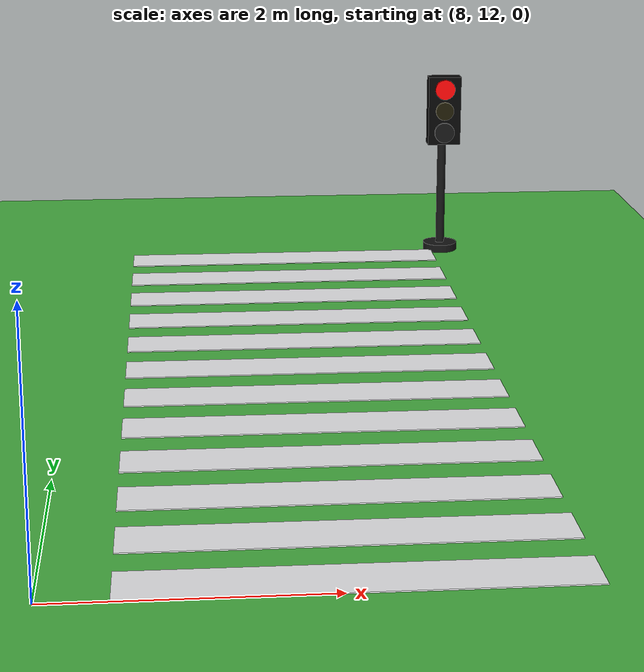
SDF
<sdf version="1.10">
 <world name="city_second">
  <model name="ground_plane">
   <static>true</static>
   <link name="link">
    <collision name="collision">
     <geometry><plane><normal>0 0 1</normal><size>300 300</size></plane></geometry>
    </collision>
    <visual name="visual">
     <geometry><plane><normal>0 0 1</normal><size>300 300</size></plane></geometry>
     <material>
      <ambient>0.280000001 0.689999998 0.25999999 1</ambient>
      <diffuse>0.280000001 0.689999998 0.25999999 1</diffuse>
      <specular>0.0299999993 0.0299999993 0.0299999993 1</specular>
     </material>
    </visual>
    <inertial>
     <mass>1</mass>
     <inertia><ixx>1</ixx><ixy>0</ixy><ixz>0</ixz><iyy>1</iyy><iyz>0</iyz><izz>1</izz></inertia>
    </inertial>
   </link>
  </model>
  <model name="crosswalk_v_2_1_east_6">
   <static>true</static>
   <pose>10.091699999999999 16.024799999999999 0.017000000000000001 0 0 0</pose>
   <link name="stripe_1">
    <collision name="collision">
     <geometry><box><size>3.2000000000000002 0.41999999999999998 0.01</size></box></geometry>
    </collision>
    <visual name="visual">
     <geometry><box><size>3.2000000000000002 0.41999999999999998 0.01</size></box></geometry>
     <material>
      <ambient>0.920000017 0.920000017 0.930000007 1</ambient>
      <diffuse>0.920000017 0.920000017 0.930000007 1</diffuse>
      <specular>0.0299999993 0.0299999993 0.0299999993 1</specular>
     </material>
    </visual>
    <pose>0 -3.8500000000000001 0 0 0 0</pose>
    <inertial>
     <mass>1</mass>
     <inertia><ixx>1</ixx><ixy>0</ixy><ixz>0</ixz><iyy>1</iyy><iyz>0</iyz><izz>1</izz></inertia>
    </inertial>
   </link>
   <link name="stripe_2">
    <collision name="collision">
     <geometry><box><size>3.2000000000000002 0.41999999999999998 0.01</size></box></geometry>
    </collision>
    <visual name="visual">
     <geometry><box><size>3.2000000000000002 0.41999999999999998 0.01</size></box></geometry>
     <material>
      <ambient>0.920000017 0.920000017 0.930000007 1</ambient>
      <diffuse>0.920000017 0.920000017 0.930000007 1</diffuse>
      <specular>0.0299999993 0.0299999993 0.0299999993 1</specular>
     </material>
    </visual>
    <pose>0 -3.1500000000000004 0 0 0 0</pose>
    <inertial>
     <mass>1</mass>
     <inertia><ixx>1</ixx><ixy>0</ixy><ixz>0</ixz><iyy>1</iyy><iyz>0</iyz><izz>1</izz></inertia>
    </inertial>
   </link>
   <link name="stripe_3">
    <collision name="collision">
     <geometry><box><size>3.2000000000000002 0.41999999999999998 0.01</size></box></geometry>
    </collision>
    <visual name="visual">
     <geometry><box><size>3.2000000000000002 0.41999999999999998 0.01</size></box></geometry>
     <material>
      <ambient>0.920000017 0.920000017 0.930000007 1</ambient>
      <diffuse>0.920000017 0.920000017 0.930000007 1</diffuse>
      <specular>0.0299999993 0.0299999993 0.0299999993 1</specular>
     </material>
    </visual>
    <pose>0 -2.4499999999999993 0 0 0 0</pose>
    <inertial>
     <mass>1</mass>
     <inertia><ixx>1</ixx><ixy>0</ixy><ixz>0</ixz><iyy>1</iyy><iyz>0</iyz><izz>1</izz></inertia>
    </inertial>
   </link>
   <link name="stripe_4">
    <collision name="collision">
     <geometry><box><size>3.2000000000000002 0.41999999999999998 0.01</size></box></geometry>
    </collision>
    <visual name="visual">
     <geometry><box><size>3.2000000000000002 0.41999999999999998 0.01</size></box></geometry>
     <material>
      <ambient>0.920000017 0.920000017 0.930000007 1</ambient>
      <diffuse>0.920000017 0.920000017 0.930000007 1</diffuse>
      <specular>0.0299999993 0.0299999993 0.0299999993 1</specular>
     </material>
    </visual>
    <pose>0 -1.75 0 0 0 0</pose>
    <inertial>
     <mass>1</mass>
     <inertia><ixx>1</ixx><ixy>0</ixy><ixz>0</ixz><iyy>1</iyy><iyz>0</iyz><izz>1</izz></inertia>
    </inertial>
   </link>
   <link name="stripe_5">
    <collision name="collision">
     <geometry><box><size>3.2000000000000002 0.41999999999999998 0.01</size></box></geometry>
    </collision>
    <visual name="visual">
     <geometry><box><size>3.2000000000000002 0.41999999999999998 0.01</size></box></geometry>
     <material>
      <ambient>0.920000017 0.920000017 0.930000007 1</ambient>
      <diffuse>0.920000017 0.920000017 0.930000007 1</diffuse>
      <specular>0.0299999993 0.0299999993 0.0299999993 1</specular>
     </material>
    </visual>
    <pose>0 -1.0500000000000007 0 0 0 0</pose>
    <inertial>
     <mass>1</mass>
     <inertia><ixx>1</ixx><ixy>0</ixy><ixz>0</ixz><iyy>1</iyy><iyz>0</iyz><izz>1</izz></inertia>
    </inertial>
   </link>
   <link name="stripe_6">
    <collision name="collision">
     <geometry><box><size>3.2000000000000002 0.41999999999999998 0.01</size></box></geometry>
    </collision>
    <visual name="visual">
     <geometry><box><size>3.2000000000000002 0.41999999999999998 0.01</size></box></geometry>
     <material>
      <ambient>0.920000017 0.920000017 0.930000007 1</ambient>
      <diffuse>0.920000017 0.920000017 0.930000007 1</diffuse>
      <specular>0.0299999993 0.0299999993 0.0299999993 1</specular>
     </material>
    </visual>
    <pose>0 -0.34999999999999964 0 0 0 0</pose>
    <inertial>
     <mass>1</mass>
     <inertia><ixx>1</ixx><ixy>0</ixy><ixz>0</ixz><iyy>1</iyy><iyz>0</iyz><izz>1</izz></inertia>
    </inertial>
   </link>
   <link name="stripe_7">
    <collision name="collision">
     <geometry><box><size>3.2000000000000002 0.41999999999999998 0.01</size></box></geometry>
    </collision>
    <visual name="visual">
     <geometry><box><size>3.2000000000000002 0.41999999999999998 0.01</size></box></geometry>
     <material>
      <ambient>0.920000017 0.920000017 0.930000007 1</ambient>
      <diffuse>0.920000017 0.920000017 0.930000007 1</diffuse>
      <specular>0.0299999993 0.0299999993 0.0299999993 1</specular>
     </material>
    </visual>
    <pose>0 0.35000000000000142 0 0 0 0</pose>
    <inertial>
     <mass>1</mass>
     <inertia><ixx>1</ixx><ixy>0</ixy><ixz>0</ixz><iyy>1</iyy><iyz>0</iyz><izz>1</izz></inertia>
    </inertial>
   </link>
   <link name="stripe_8">
    <collision name="collision">
     <geometry><box><size>3.2000000000000002 0.41999999999999998 0.01</size></box></geometry>
    </collision>
    <visual name="visual">
     <geometry><box><size>3.2000000000000002 0.41999999999999998 0.01</size></box></geometry>
     <material>
      <ambient>0.920000017 0.920000017 0.930000007 1</ambient>
      <diffuse>0.920000017 0.920000017 0.930000007 1</diffuse>
      <specular>0.0299999993 0.0299999993 0.0299999993 1</specular>
     </material>
    </visual>
    <pose>0 1.0500000000000007 0 0 0 0</pose>
    <inertial>
     <mass>1</mass>
     <inertia><ixx>1</ixx><ixy>0</ixy><ixz>0</ixz><iyy>1</iyy><iyz>0</iyz><izz>1</izz></inertia>
    </inertial>
   </link>
   <link name="stripe_9">
    <collision name="collision">
     <geometry><box><size>3.2000000000000002 0.41999999999999998 0.01</size></box></geometry>
    </collision>
    <visual name="visual">
     <geometry><box><size>3.2000000000000002 0.41999999999999998 0.01</size></box></geometry>
     <material>
      <ambient>0.920000017 0.920000017 0.930000007 1</ambient>
      <diffuse>0.920000017 0.920000017 0.930000007 1</diffuse>
      <specular>0.0299999993 0.0299999993 0.0299999993 1</specular>
     </material>
    </visual>
    <pose>0 1.75 0 0 0 0</pose>
    <inertial>
     <mass>1</mass>
     <inertia><ixx>1</ixx><ixy>0</ixy><ixz>0</ixz><iyy>1</iyy><iyz>0</iyz><izz>1</izz></inertia>
    </inertial>
   </link>
   <link name="stripe_10">
    <collision name="collision">
     <geometry><box><size>3.2000000000000002 0.41999999999999998 0.01</size></box></geometry>
    </collision>
    <visual name="visual">
     <geometry><box><size>3.2000000000000002 0.41999999999999998 0.01</size></box></geometry>
     <material>
      <ambient>0.920000017 0.920000017 0.930000007 1</ambient>
      <diffuse>0.920000017 0.920000017 0.930000007 1</diffuse>
      <specular>0.0299999993 0.0299999993 0.0299999993 1</specular>
     </material>
    </visual>
    <pose>0 2.4499999999999993 0 0 0 0</pose>
    <inertial>
     <mass>1</mass>
     <inertia><ixx>1</ixx><ixy>0</ixy><ixz>0</ixz><iyy>1</iyy><iyz>0</iyz><izz>1</izz></inertia>
    </inertial>
   </link>
   <link name="stripe_11">
    <collision name="collision">
     <geometry><box><size>3.2000000000000002 0.41999999999999998 0.01</size></box></geometry>
    </collision>
    <visual name="visual">
     <geometry><box><size>3.2000000000000002 0.41999999999999998 0.01</size></box></geometry>
     <material>
      <ambient>0.920000017 0.920000017 0.930000007 1</ambient>
      <diffuse>0.920000017 0.920000017 0.930000007 1</diffuse>
      <specular>0.0299999993 0.0299999993 0.0299999993 1</specular>
     </material>
    </visual>
    <pose>0 3.1499999999999986 0 0 0 0</pose>
    <inertial>
     <mass>1</mass>
     <inertia><ixx>1</ixx><ixy>0</ixy><ixz>0</ixz><iyy>1</iyy><iyz>0</iyz><izz>1</izz></inertia>
    </inertial>
   </link>
   <link name="stripe_12">
    <collision name="collision">
     <geometry><box><size>3.2000000000000002 0.41999999999999998 0.01</size></box></geometry>
    </collision>
    <visual name="visual">
     <geometry><box><size>3.2000000000000002 0.41999999999999998 0.01</size></box></geometry>
     <material>
      <ambient>0.920000017 0.920000017 0.930000007 1</ambient>
      <diffuse>0.920000017 0.920000017 0.930000007 1</diffuse>
      <specular>0.0299999993 0.0299999993 0.0299999993 1</specular>
     </material>
    </visual>
    <pose>0 3.8500000000000014 0 0 0 0</pose>
    <inertial>
     <mass>1</mass>
     <inertia><ixx>1</ixx><ixy>0</ixy><ixz>0</ixz><iyy>1</iyy><iyz>0</iyz><izz>1</izz></inertia>
    </inertial>
   </link>
  </model>
  <model name="simple_traffic_light_red_south_2">
   <static>true</static>
   <pose>11.805923389308813 20.195423981041646 0 0 0 -3.1415900000000754</pose>
   <link name="base">
    <pose>0 0 0.040000000000000001 0 0 0</pose>
    <collision name="collision">
     <geometry>
      <cylinder><radius>0.17999999999999999</radius><length>0.080000000000000002</length></cylinder>
     </geometry>
    </collision>
    <visual name="visual">
     <geometry>
      <cylinder><radius>0.17999999999999999</radius><length>0.080000000000000002</length></cylinder>
     </geometry>
     <material>
      <ambient>0.0799999982 0.0799999982 0.0799999982 1</ambient>
      <diffuse>0.0799999982 0.0799999982 0.0799999982 1</diffuse>
      <specular>0.150000006 0.150000006 0.150000006 1</specular>
      <emissive>0 0 0 1</emissive>
     </material>
    </visual>
    <inertial>
     <mass>1</mass>
     <inertia><ixx>1</ixx><ixy>0</ixy><ixz>0</ixz><iyy>1</iyy><iyz>0</iyz><izz>1</izz></inertia>
    </inertial>
   </link>
   <link name="pole">
    <pose>-1.7763568394002505e-15 1.0658141036401503e-14 0.80000000000000016 0 0 0</pose>
    <collision name="collision">
     <geometry>
      <cylinder><radius>0.044999999999999998</radius><length>1.6000000000000001</length></cylinder>
     </geometry>
    </collision>
    <visual name="visual">
     <geometry>
      <cylinder><radius>0.044999999999999998</radius><length>1.6000000000000001</length></cylinder>
     </geometry>
     <material>
      <ambient>0.0799999982 0.0799999982 0.0799999982 1</ambient>
      <diffuse>0.0799999982 0.0799999982 0.0799999982 1</diffuse>
      <specular>0.150000006 0.150000006 0.150000006 1</specular>
      <emissive>0 0 0 1</emissive>
     </material>
    </visual>
    <inertial>
     <mass>1</mass>
     <inertia><ixx>1</ixx><ixy>0</ixy><ixz>0</ixz><iyy>1</iyy><iyz>0</iyz><izz>1</izz></inertia>
    </inertial>
   </link>
   <link name="signal_box">
    <pose>7.1054273576010019e-15 0.090000000000017621 1.5500000000000003 0 0 0</pose>
    <collision name="collision">
     <geometry><box><size>0.34000000000000002 0.16 0.71999999999999997</size></box></geometry>
    </collision>
    <visual name="visual">
     <geometry><box><size>0.34000000000000002 0.16 0.71999999999999997</size></box></geometry>
     <material>
      <ambient>0.0199999996 0.0199999996 0.0199999996 1</ambient>
      <diffuse>0.0199999996 0.0199999996 0.0199999996 1</diffuse>
      <specular>0.150000006 0.150000006 0.150000006 1</specular>
      <emissive>0 0 0 1</emissive>
     </material>
    </visual>
    <inertial>
     <mass>1</mass>
     <inertia><ixx>1</ixx><ixy>0</ixy><ixz>0</ixz><iyy>1</iyy><iyz>0</iyz><izz>1</izz></inertia>
    </inertial>
   </link>
   <link name="red_lens">
    <pose>-1.7763568394002505e-15 0.18100000000001515 1.78 1.5707963267999998 -8.9688530999915811e-17 2.8884837225759793e-16</pose>
    <collision name="collision">
     <geometry><cylinder><radius>0.105</radius><length>0.035000000000000003</length></cylinder></geometry>
    </collision>
    <visual name="visual">
     <geometry><cylinder><radius>0.105</radius><length>0.035000000000000003</length></cylinder></geometry>
     <material>
      <ambient>1 0.0199999996 0.0199999996 1</ambient>
      <diffuse>1 0.0199999996 0.0199999996 1</diffuse>
      <specular>0.150000006 0.150000006 0.150000006 1</specular>
      <emissive>1 0.0199999996 0.0199999996 1</emissive>
     </material>
    </visual>
    <inertial>
     <mass>1</mass>
     <inertia><ixx>1</ixx><ixy>0</ixy><ixz>0</ixz><iyy>1</iyy><iyz>0</iyz><izz>1</izz></inertia>
    </inertial>
   </link>
   <link name="yellow_lens">
    <pose>5.3290705182007514e-15 0.18200000000001282 1.5500000000000003 1.5707963267999998 -8.9688530999915811e-17 2.8884837225759793e-16</pose>
    <collision name="collision">
     <geometry>
      <cylinder><radius>0.095000000000000001</radius><length>0.035000000000000003</length></cylinder>
     </geometry>
    </collision>
    <visual name="visual">
     <geometry>
      <cylinder><radius>0.095000000000000001</radius><length>0.035000000000000003</length></cylinder>
     </geometry>
     <material>
      <ambient>0.119999997 0.100000001 0.0199999996 1</ambient>
      <diffuse>0.119999997 0.100000001 0.0199999996 1</diffuse>
      <specular>0.150000006 0.150000006 0.150000006 1</specular>
      <emissive>0 0 0 1</emissive>
     </material>
    </visual>
    <inertial>
     <mass>1</mass>
     <inertia><ixx>1</ixx><ixy>0</ixy><ixz>0</ixz><iyy>1</iyy><iyz>0</iyz><izz>1</izz></inertia>
    </inertial>
   </link>
   <link name="green_lens">
    <pose>-7.1054273576010019e-15 0.18300000000001404 1.3200000000000003 1.5707963267999998 -8.9688530999915811e-17 2.8884837225759793e-16</pose>
    <collision name="collision">
     <geometry><cylinder><radius>0.105</radius><length>0.035000000000000003</length></cylinder></geometry>
    </collision>
    <visual name="visual">
     <geometry><cylinder><radius>0.105</radius><length>0.035000000000000003</length></cylinder></geometry>
     <material>
      <ambient>0.0799999982 0.0799999982 0.0799999982 1</ambient>
      <diffuse>0.0799999982 0.0799999982 0.0799999982 1</diffuse>
      <specular>0.150000006 0.150000006 0.150000006 1</specular>
      <emissive>0 0 0 1</emissive>
     </material>
    </visual>
    <inertial>
     <mass>1</mass>
     <inertia><ixx>1</ixx><ixy>0</ixy><ixz>0</ixz><iyy>1</iyy><iyz>0</iyz><izz>1</izz></inertia>
    </inertial>
   </link>
  </model>
 </world>
</sdf>
